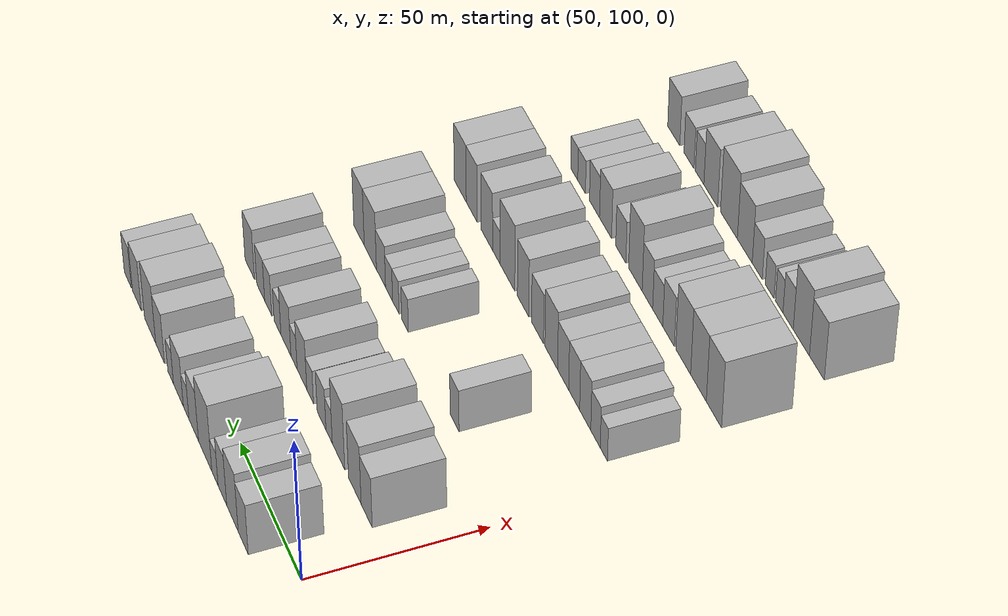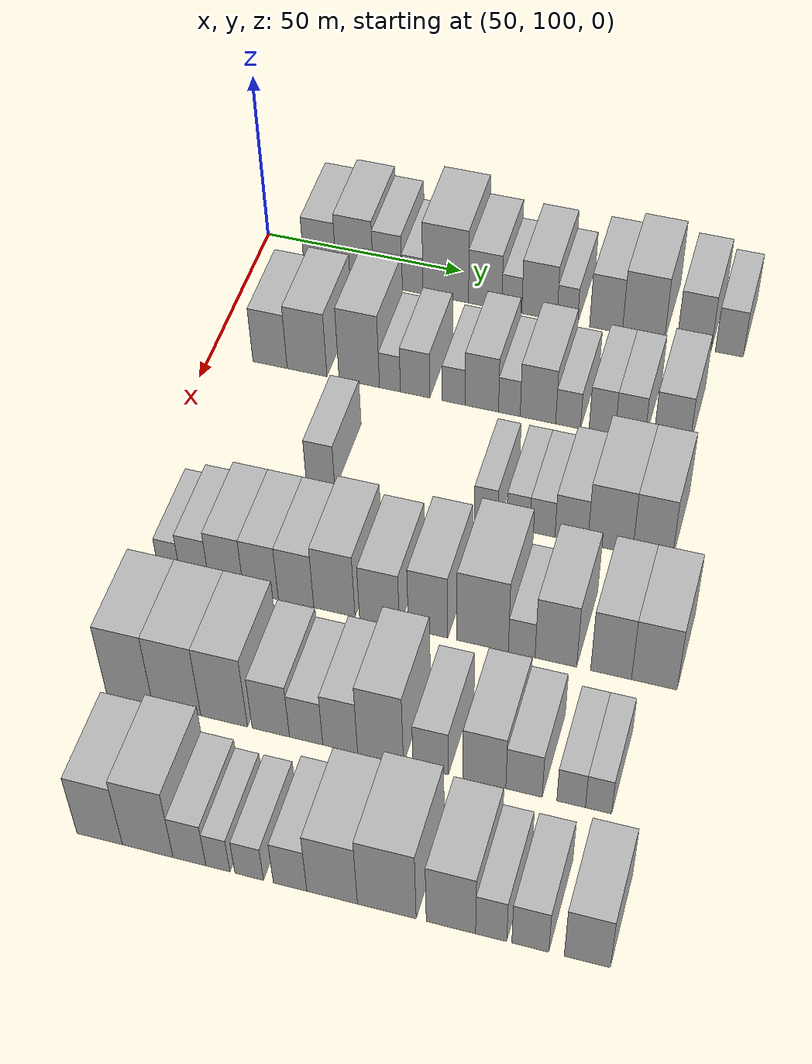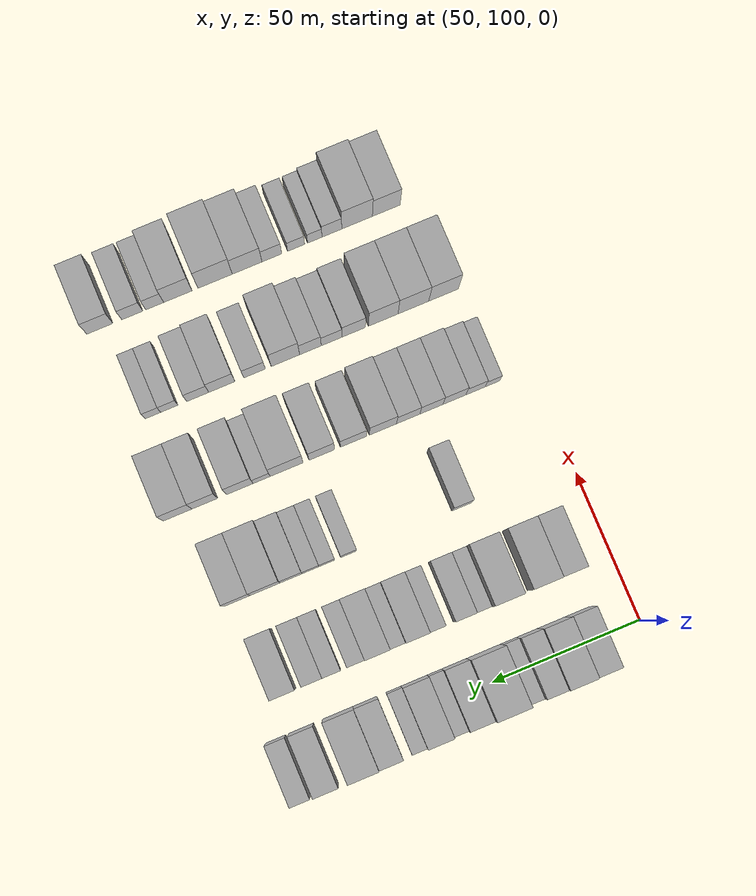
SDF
<sdf version="1.6">
 <world name="default">
  <model name="building_65">
   <static>1</static>
   <pose>50.0000 116.8563 0 0.000000 0.000000 0.000000</pose>
   <link name="link">
    <pose>0 0 9.00 0 0 0</pose>
    <collision name="collision"><geometry><box><size>20.0000 8.2860 18.0000</size></box></geometry></collision>
    <visual name="visual">
     <cast_shadows>0</cast_shadows>
     <geometry><box><size>20.0000 8.2860 18.0000</size></box></geometry>
     <material>
      <script>
       <uri>model://HANNAS_wall/materials/scripts</uri>
       <uri>model://HANNAS_wall/materials/textures</uri>
       <name>vrc/HANNAS_wall</name>
      </script>
     </material>
    </visual>
   </link>
  </model>
  <model name="building_66">
   <static>1</static>
   <pose>50.0000 125.7519 0 0.000000 0.000000 0.000000</pose>
   <link name="link">
    <pose>0 0 10.50 0 0 0</pose>
    <collision name="collision"><geometry><box><size>20.0000 9.5054 21.0000</size></box></geometry></collision>
    <visual name="visual">
     <cast_shadows>0</cast_shadows>
     <geometry><box><size>20.0000 9.5054 21.0000</size></box></geometry>
     <material>
      <script>
       <uri>model://HANNAS_wall/materials/scripts</uri>
       <uri>model://HANNAS_wall/materials/textures</uri>
       <name>vrc/HANNAS_wall</name>
      </script>
     </material>
    </visual>
   </link>
  </model>
  <model name="building_67">
   <static>1</static>
   <pose>50.0000 134.1260 0 0.000000 0.000000 0.000000</pose>
   <link name="link">
    <pose>0 0 9.00 0 0 0</pose>
    <collision name="collision"><geometry><box><size>20.0000 7.2428 18.0000</size></box></geometry></collision>
    <visual name="visual">
     <cast_shadows>0</cast_shadows>
     <geometry><box><size>20.0000 7.2428 18.0000</size></box></geometry>
     <material>
      <script>
       <uri>model://HANNAS_wall/materials/scripts</uri>
       <uri>model://HANNAS_wall/materials/textures</uri>
       <name>vrc/HANNAS_wall</name>
      </script>
     </material>
    </visual>
   </link>
  </model>
  <model name="building_68">
   <static>1</static>
   <pose>50.0000 140.4162 0 0.000000 0.000000 0.000000</pose>
   <link name="link">
    <pose>0 0 6.00 0 0 0</pose>
    <collision name="collision"><geometry><box><size>20.0000 5.3376 12.0000</size></box></geometry></collision>
    <visual name="visual">
     <cast_shadows>0</cast_shadows>
     <geometry><box><size>20.0000 5.3376 12.0000</size></box></geometry>
     <material>
      <script>
       <uri>model://HANNAS_wall/materials/scripts</uri>
       <uri>model://HANNAS_wall/materials/textures</uri>
       <name>vrc/HANNAS_wall</name>
      </script>
     </material>
    </visual>
   </link>
  </model>
  <model name="building_69">
   <static>1</static>
   <pose>50.0000 148.8198 0 0.000000 0.000000 0.000000</pose>
   <link name="link">
    <pose>0 0 12.00 0 0 0</pose>
    <collision name="collision"><geometry><box><size>20.0000 11.4696 24.0000</size></box></geometry></collision>
    <visual name="visual">
     <cast_shadows>0</cast_shadows>
     <geometry><box><size>20.0000 11.4696 24.0000</size></box></geometry>
     <material>
      <script>
       <uri>model://HANNAS_wall/materials/scripts</uri>
       <uri>model://HANNAS_wall/materials/textures</uri>
       <name>vrc/HANNAS_wall</name>
      </script>
     </material>
    </visual>
   </link>
  </model>
  <model name="building_70">
   <static>1</static>
   <pose>50.0000 158.7197 0 0.000000 0.000000 0.000000</pose>
   <link name="link">
    <pose>0 0 9.00 0 0 0</pose>
    <collision name="collision"><geometry><box><size>20.0000 8.3300 18.0000</size></box></geometry></collision>
    <visual name="visual">
     <cast_shadows>0</cast_shadows>
     <geometry><box><size>20.0000 8.3300 18.0000</size></box></geometry>
     <material>
      <script>
       <uri>model://HANNAS_wall/materials/scripts</uri>
       <uri>model://HANNAS_wall/materials/textures</uri>
       <name>vrc/HANNAS_wall</name>
      </script>
     </material>
    </visual>
   </link>
  </model>
  <model name="building_71">
   <static>1</static>
   <pose>50.0000 165.3689 0 0.000000 0.000000 0.000000</pose>
   <link name="link">
    <pose>0 0 6.00 0 0 0</pose>
    <collision name="collision"><geometry><box><size>20.0000 4.9685 12.0000</size></box></geometry></collision>
    <visual name="visual">
     <cast_shadows>0</cast_shadows>
     <geometry><box><size>20.0000 4.9685 12.0000</size></box></geometry>
     <material>
      <script>
       <uri>model://HANNAS_wall/materials/scripts</uri>
       <uri>model://HANNAS_wall/materials/textures</uri>
       <name>vrc/HANNAS_wall</name>
      </script>
     </material>
    </visual>
   </link>
  </model>
  <model name="building_72">
   <static>1</static>
   <pose>50.0000 172.2181 0 0.000000 0.000000 0.000000</pose>
   <link name="link">
    <pose>0 0 9.00 0 0 0</pose>
    <collision name="collision"><geometry><box><size>20.0000 8.7299 18.0000</size></box></geometry></collision>
    <visual name="visual">
     <cast_shadows>0</cast_shadows>
     <geometry><box><size>20.0000 8.7299 18.0000</size></box></geometry>
     <material>
      <script>
       <uri>model://HANNAS_wall/materials/scripts</uri>
       <uri>model://HANNAS_wall/materials/textures</uri>
       <name>vrc/HANNAS_wall</name>
      </script>
     </material>
    </visual>
   </link>
  </model>
  <model name="building_73">
   <static>1</static>
   <pose>50.0000 179.1128 0 0.000000 0.000000 0.000000</pose>
   <link name="link">
    <pose>0 0 6.00 0 0 0</pose>
    <collision name="collision"><geometry><box><size>20.0000 5.0595 12.0000</size></box></geometry></collision>
    <visual name="visual">
     <cast_shadows>0</cast_shadows>
     <geometry><box><size>20.0000 5.0595 12.0000</size></box></geometry>
     <material>
      <script>
       <uri>model://HANNAS_wall/materials/scripts</uri>
       <uri>model://HANNAS_wall/materials/textures</uri>
       <name>vrc/HANNAS_wall</name>
      </script>
     </material>
    </visual>
   </link>
  </model>
  <model name="building_74">
   <static>1</static>
   <pose>50.0000 188.6427 0 0.000000 0.000000 0.000000</pose>
   <link name="link">
    <pose>0 0 9.00 0 0 0</pose>
    <collision name="collision"><geometry><box><size>20.0000 8.0004 18.0000</size></box></geometry></collision>
    <visual name="visual">
     <cast_shadows>0</cast_shadows>
     <geometry><box><size>20.0000 8.0004 18.0000</size></box></geometry>
     <material>
      <script>
       <uri>model://HANNAS_wall/materials/scripts</uri>
       <uri>model://HANNAS_wall/materials/textures</uri>
       <name>vrc/HANNAS_wall</name>
      </script>
     </material>
    </visual>
   </link>
  </model>
  <model name="building_75">
   <static>1</static>
   <pose>50.0000 197.7881 0 0.000000 0.000000 0.000000</pose>
   <link name="link">
    <pose>0 0 10.50 0 0 0</pose>
    <collision name="collision"><geometry><box><size>20.0000 10.2904 21.0000</size></box></geometry></collision>
    <visual name="visual">
     <cast_shadows>0</cast_shadows>
     <geometry><box><size>20.0000 10.2904 21.0000</size></box></geometry>
     <material>
      <script>
       <uri>model://HANNAS_wall/materials/scripts</uri>
       <uri>model://HANNAS_wall/materials/textures</uri>
       <name>vrc/HANNAS_wall</name>
      </script>
     </material>
    </visual>
   </link>
  </model>
  <model name="building_76">
   <static>1</static>
   <pose>50.0000 210.0885 0 0.000000 0.000000 0.000000</pose>
   <link name="link">
    <pose>0 0 9.00 0 0 0</pose>
    <collision name="collision"><geometry><box><size>20.0000 8.3103 18.0000</size></box></geometry></collision>
    <visual name="visual">
     <cast_shadows>0</cast_shadows>
     <geometry><box><size>20.0000 8.3103 18.0000</size></box></geometry>
     <material>
      <script>
       <uri>model://HANNAS_wall/materials/scripts</uri>
       <uri>model://HANNAS_wall/materials/textures</uri>
       <name>vrc/HANNAS_wall</name>
      </script>
     </material>
    </visual>
   </link>
  </model>
  <model name="building_77">
   <static>1</static>
   <pose>50.0000 218.5886 0 0.000000 0.000000 0.000000</pose>
   <link name="link">
    <pose>0 0 7.50 0 0 0</pose>
    <collision name="collision"><geometry><box><size>20.0000 6.6901 15.0000</size></box></geometry></collision>
    <visual name="visual">
     <cast_shadows>0</cast_shadows>
     <geometry><box><size>20.0000 6.6901 15.0000</size></box></geometry>
     <material>
      <script>
       <uri>model://HANNAS_wall/materials/scripts</uri>
       <uri>model://HANNAS_wall/materials/textures</uri>
       <name>vrc/HANNAS_wall</name>
      </script>
     </material>
    </visual>
   </link>
  </model>
  <model name="building_185">
   <static>1</static>
   <pose>82.0000 114.6310 0 0.000000 0.000000 0.000000</pose>
   <link name="link">
    <pose>0 0 9.00 0 0 0</pose>
    <collision name="collision"><geometry><box><size>20.0000 8.5246 18.0000</size></box></geometry></collision>
    <visual name="visual">
     <cast_shadows>0</cast_shadows>
     <geometry><box><size>20.0000 8.5246 18.0000</size></box></geometry>
     <material>
      <script>
       <uri>model://HANNAS_wall/materials/scripts</uri>
       <uri>model://HANNAS_wall/materials/textures</uri>
       <name>vrc/HANNAS_wall</name>
      </script>
     </material>
    </visual>
   </link>
  </model>
  <model name="building_186">
   <static>1</static>
   <pose>82.0000 123.7968 0 0.000000 0.000000 0.000000</pose>
   <link name="link">
    <pose>0 0 10.50 0 0 0</pose>
    <collision name="collision"><geometry><box><size>20.0000 9.8070 21.0000</size></box></geometry></collision>
    <visual name="visual">
     <cast_shadows>0</cast_shadows>
     <geometry><box><size>20.0000 9.8070 21.0000</size></box></geometry>
     <material>
      <script>
       <uri>model://HANNAS_wall/materials/scripts</uri>
       <uri>model://HANNAS_wall/materials/textures</uri>
       <name>vrc/HANNAS_wall</name>
      </script>
     </material>
    </visual>
   </link>
  </model>
  <model name="building_187">
   <static>1</static>
   <pose>82.0000 136.6549 0 0.000000 0.000000 0.000000</pose>
   <link name="link">
    <pose>0 0 12.00 0 0 0</pose>
    <collision name="collision"><geometry><box><size>20.0000 9.9093 24.0000</size></box></geometry></collision>
    <visual name="visual">
     <cast_shadows>0</cast_shadows>
     <geometry><box><size>20.0000 9.9093 24.0000</size></box></geometry>
     <material>
      <script>
       <uri>model://HANNAS_wall/materials/scripts</uri>
       <uri>model://HANNAS_wall/materials/textures</uri>
       <name>vrc/HANNAS_wall</name>
      </script>
     </material>
    </visual>
   </link>
  </model>
  <model name="building_188">
   <static>1</static>
   <pose>82.0000 144.1538 0 0.000000 0.000000 0.000000</pose>
   <link name="link">
    <pose>0 0 6.00 0 0 0</pose>
    <collision name="collision"><geometry><box><size>20.0000 5.0884 12.0000</size></box></geometry></collision>
    <visual name="visual">
     <cast_shadows>0</cast_shadows>
     <geometry><box><size>20.0000 5.0884 12.0000</size></box></geometry>
     <material>
      <script>
       <uri>model://HANNAS_wall/materials/scripts</uri>
       <uri>model://HANNAS_wall/materials/textures</uri>
       <name>vrc/HANNAS_wall</name>
      </script>
     </material>
    </visual>
   </link>
  </model>
  <model name="building_189">
   <static>1</static>
   <pose>82.0000 150.2607 0 0.000000 0.000000 0.000000</pose>
   <link name="link">
    <pose>0 0 7.50 0 0 0</pose>
    <collision name="collision"><geometry><box><size>20.0000 7.1255 15.0000</size></box></geometry></collision>
    <visual name="visual">
     <cast_shadows>0</cast_shadows>
     <geometry><box><size>20.0000 7.1255 15.0000</size></box></geometry>
     <material>
      <script>
       <uri>model://HANNAS_wall/materials/scripts</uri>
       <uri>model://HANNAS_wall/materials/textures</uri>
       <name>vrc/HANNAS_wall</name>
      </script>
     </material>
    </visual>
   </link>
  </model>
  <model name="building_190">
   <static>1</static>
   <pose>82.0000 159.5762 0 0.000000 0.000000 0.000000</pose>
   <link name="link">
    <pose>0 0 6.00 0 0 0</pose>
    <collision name="collision"><geometry><box><size>20.0000 5.5056 12.0000</size></box></geometry></collision>
    <visual name="visual">
     <cast_shadows>0</cast_shadows>
     <geometry><box><size>20.0000 5.5056 12.0000</size></box></geometry>
     <material>
      <script>
       <uri>model://HANNAS_wall/materials/scripts</uri>
       <uri>model://HANNAS_wall/materials/textures</uri>
       <name>vrc/HANNAS_wall</name>
      </script>
     </material>
    </visual>
   </link>
  </model>
  <model name="building_191">
   <static>1</static>
   <pose>82.0000 166.3280 0 0.000000 0.000000 0.000000</pose>
   <link name="link">
    <pose>0 0 9.00 0 0 0</pose>
    <collision name="collision"><geometry><box><size>20.0000 7.9979 18.0000</size></box></geometry></collision>
    <visual name="visual">
     <cast_shadows>0</cast_shadows>
     <geometry><box><size>20.0000 7.9979 18.0000</size></box></geometry>
     <material>
      <script>
       <uri>model://HANNAS_wall/materials/scripts</uri>
       <uri>model://HANNAS_wall/materials/textures</uri>
       <name>vrc/HANNAS_wall</name>
      </script>
     </material>
    </visual>
   </link>
  </model>
  <model name="building_192">
   <static>1</static>
   <pose>82.0000 172.9100 0 0.000000 0.000000 0.000000</pose>
   <link name="link">
    <pose>0 0 6.00 0 0 0</pose>
    <collision name="collision"><geometry><box><size>20.0000 5.1660 12.0000</size></box></geometry></collision>
    <visual name="visual">
     <cast_shadows>0</cast_shadows>
     <geometry><box><size>20.0000 5.1660 12.0000</size></box></geometry>
     <material>
      <script>
       <uri>model://HANNAS_wall/materials/scripts</uri>
       <uri>model://HANNAS_wall/materials/textures</uri>
       <name>vrc/HANNAS_wall</name>
      </script>
     </material>
    </visual>
   </link>
  </model>
  <model name="building_193">
   <static>1</static>
   <pose>82.0000 179.7073 0 0.000000 0.000000 0.000000</pose>
   <link name="link">
    <pose>0 0 9.00 0 0 0</pose>
    <collision name="collision"><geometry><box><size>20.0000 8.4288 18.0000</size></box></geometry></collision>
    <visual name="visual">
     <cast_shadows>0</cast_shadows>
     <geometry><box><size>20.0000 8.4288 18.0000</size></box></geometry>
     <material>
      <script>
       <uri>model://HANNAS_wall/materials/scripts</uri>
       <uri>model://HANNAS_wall/materials/textures</uri>
       <name>vrc/HANNAS_wall</name>
      </script>
     </material>
    </visual>
   </link>
  </model>
  <model name="building_194">
   <static>1</static>
   <pose>82.0000 186.8511 0 0.000000 0.000000 0.000000</pose>
   <link name="link">
    <pose>0 0 6.00 0 0 0</pose>
    <collision name="collision"><geometry><box><size>20.0000 5.8588 12.0000</size></box></geometry></collision>
    <visual name="visual">
     <cast_shadows>0</cast_shadows>
     <geometry><box><size>20.0000 5.8588 12.0000</size></box></geometry>
     <material>
      <script>
       <uri>model://HANNAS_wall/materials/scripts</uri>
       <uri>model://HANNAS_wall/materials/textures</uri>
       <name>vrc/HANNAS_wall</name>
      </script>
     </material>
    </visual>
   </link>
  </model>
  <model name="building_195">
   <static>1</static>
   <pose>82.0000 194.8453 0 0.000000 0.000000 0.000000</pose>
   <link name="link">
    <pose>0 0 7.50 0 0 0</pose>
    <collision name="collision"><geometry><box><size>20.0000 6.1296 15.0000</size></box></geometry></collision>
    <visual name="visual">
     <cast_shadows>0</cast_shadows>
     <geometry><box><size>20.0000 6.1296 15.0000</size></box></geometry>
     <material>
      <script>
       <uri>model://HANNAS_wall/materials/scripts</uri>
       <uri>model://HANNAS_wall/materials/textures</uri>
       <name>vrc/HANNAS_wall</name>
      </script>
     </material>
    </visual>
   </link>
  </model>
  <model name="building_196">
   <static>1</static>
   <pose>82.0000 201.3573 0 0.000000 0.000000 0.000000</pose>
   <link name="link">
    <pose>0 0 7.50 0 0 0</pose>
    <collision name="collision"><geometry><box><size>20.0000 6.8944 15.0000</size></box></geometry></collision>
    <visual name="visual">
     <cast_shadows>0</cast_shadows>
     <geometry><box><size>20.0000 6.8944 15.0000</size></box></geometry>
     <material>
      <script>
       <uri>model://HANNAS_wall/materials/scripts</uri>
       <uri>model://HANNAS_wall/materials/textures</uri>
       <name>vrc/HANNAS_wall</name>
      </script>
     </material>
    </visual>
   </link>
  </model>
  <model name="building_197">
   <static>1</static>
   <pose>82.0000 210.9634 0 0.000000 0.000000 0.000000</pose>
   <link name="link">
    <pose>0 0 9.00 0 0 0</pose>
    <collision name="collision"><geometry><box><size>20.0000 8.3178 18.0000</size></box></geometry></collision>
    <visual name="visual">
     <cast_shadows>0</cast_shadows>
     <geometry><box><size>20.0000 8.3178 18.0000</size></box></geometry>
     <material>
      <script>
       <uri>model://HANNAS_wall/materials/scripts</uri>
       <uri>model://HANNAS_wall/materials/textures</uri>
       <name>vrc/HANNAS_wall</name>
      </script>
     </material>
    </visual>
   </link>
  </model>
  <model name="building_312">
   <static>1</static>
   <pose>114.0000 137.4032 0 0.000000 0.000000 0.000000</pose>
   <link name="link">
    <pose>0 0 7.50 0 0 0</pose>
    <collision name="collision"><geometry><box><size>20.0000 6.7089 15.0000</size></box></geometry></collision>
    <visual name="visual">
     <cast_shadows>0</cast_shadows>
     <geometry><box><size>20.0000 6.7089 15.0000</size></box></geometry>
     <material>
      <script>
       <uri>model://HANNAS_wall/materials/scripts</uri>
       <uri>model://HANNAS_wall/materials/textures</uri>
       <name>vrc/HANNAS_wall</name>
      </script>
     </material>
    </visual>
   </link>
  </model>
  <model name="building_313">
   <static>1</static>
   <pose>114.0000 175.7740 0 0.000000 0.000000 0.000000</pose>
   <link name="link">
    <pose>0 0 6.00 0 0 0</pose>
    <collision name="collision"><geometry><box><size>20.0000 5.3442 12.0000</size></box></geometry></collision>
    <visual name="visual">
     <cast_shadows>0</cast_shadows>
     <geometry><box><size>20.0000 5.3442 12.0000</size></box></geometry>
     <material>
      <script>
       <uri>model://HANNAS_wall/materials/scripts</uri>
       <uri>model://HANNAS_wall/materials/textures</uri>
       <name>vrc/HANNAS_wall</name>
      </script>
     </material>
    </visual>
   </link>
  </model>
  <model name="building_314">
   <static>1</static>
   <pose>114.0000 183.0753 0 0.000000 0.000000 0.000000</pose>
   <link name="link">
    <pose>0 0 6.00 0 0 0</pose>
    <collision name="collision"><geometry><box><size>20.0000 5.2583 12.0000</size></box></geometry></collision>
    <visual name="visual">
     <cast_shadows>0</cast_shadows>
     <geometry><box><size>20.0000 5.2583 12.0000</size></box></geometry>
     <material>
      <script>
       <uri>model://HANNAS_wall/materials/scripts</uri>
       <uri>model://HANNAS_wall/materials/textures</uri>
       <name>vrc/HANNAS_wall</name>
      </script>
     </material>
    </visual>
   </link>
  </model>
  <model name="building_315">
   <static>1</static>
   <pose>114.0000 188.5568 0 0.000000 0.000000 0.000000</pose>
   <link name="link">
    <pose>0 0 6.00 0 0 0</pose>
    <collision name="collision"><geometry><box><size>20.0000 5.7047 12.0000</size></box></geometry></collision>
    <visual name="visual">
     <cast_shadows>0</cast_shadows>
     <geometry><box><size>20.0000 5.7047 12.0000</size></box></geometry>
     <material>
      <script>
       <uri>model://HANNAS_wall/materials/scripts</uri>
       <uri>model://HANNAS_wall/materials/textures</uri>
       <name>vrc/HANNAS_wall</name>
      </script>
     </material>
    </visual>
   </link>
  </model>
  <model name="building_316">
   <static>1</static>
   <pose>114.0000 195.1018 0 0.000000 0.000000 0.000000</pose>
   <link name="link">
    <pose>0 0 7.50 0 0 0</pose>
    <collision name="collision"><geometry><box><size>20.0000 7.3852 15.0000</size></box></geometry></collision>
    <visual name="visual">
     <cast_shadows>0</cast_shadows>
     <geometry><box><size>20.0000 7.3852 15.0000</size></box></geometry>
     <material>
      <script>
       <uri>model://HANNAS_wall/materials/scripts</uri>
       <uri>model://HANNAS_wall/materials/textures</uri>
       <name>vrc/HANNAS_wall</name>
      </script>
     </material>
    </visual>
   </link>
  </model>
  <model name="building_317">
   <static>1</static>
   <pose>114.0000 203.8084 0 0.000000 0.000000 0.000000</pose>
   <link name="link">
    <pose>0 0 10.50 0 0 0</pose>
    <collision name="collision"><geometry><box><size>20.0000 10.0279 21.0000</size></box></geometry></collision>
    <visual name="visual">
     <cast_shadows>0</cast_shadows>
     <geometry><box><size>20.0000 10.0279 21.0000</size></box></geometry>
     <material>
      <script>
       <uri>model://HANNAS_wall/materials/scripts</uri>
       <uri>model://HANNAS_wall/materials/textures</uri>
       <name>vrc/HANNAS_wall</name>
      </script>
     </material>
    </visual>
   </link>
  </model>
  <model name="building_318">
   <static>1</static>
   <pose>114.0000 213.2002 0 0.000000 0.000000 0.000000</pose>
   <link name="link">
    <pose>0 0 10.50 0 0 0</pose>
    <collision name="collision"><geometry><box><size>20.0000 8.7557 21.0000</size></box></geometry></collision>
    <visual name="visual">
     <cast_shadows>0</cast_shadows>
     <geometry><box><size>20.0000 8.7557 21.0000</size></box></geometry>
     <material>
      <script>
       <uri>model://HANNAS_wall/materials/scripts</uri>
       <uri>model://HANNAS_wall/materials/textures</uri>
       <name>vrc/HANNAS_wall</name>
      </script>
     </material>
    </visual>
   </link>
  </model>
  <model name="building_417">
   <static>1</static>
   <pose>146.0000 113.3284 0 0.000000 0.000000 0.000000</pose>
   <link name="link">
    <pose>0 0 6.00 0 0 0</pose>
    <collision name="collision"><geometry><box><size>20.0000 4.9886 12.0000</size></box></geometry></collision>
    <visual name="visual">
     <cast_shadows>0</cast_shadows>
     <geometry><box><size>20.0000 4.9886 12.0000</size></box></geometry>
     <material>
      <script>
       <uri>model://HANNAS_wall/materials/scripts</uri>
       <uri>model://HANNAS_wall/materials/textures</uri>
       <name>vrc/HANNAS_wall</name>
      </script>
     </material>
    </visual>
   </link>
  </model>
  <model name="building_418">
   <static>1</static>
   <pose>146.0000 119.1225 0 0.000000 0.000000 0.000000</pose>
   <link name="link">
    <pose>0 0 7.50 0 0 0</pose>
    <collision name="collision"><geometry><box><size>20.0000 6.5997 15.0000</size></box></geometry></collision>
    <visual name="visual">
     <cast_shadows>0</cast_shadows>
     <geometry><box><size>20.0000 6.5997 15.0000</size></box></geometry>
     <material>
      <script>
       <uri>model://HANNAS_wall/materials/scripts</uri>
       <uri>model://HANNAS_wall/materials/textures</uri>
       <name>vrc/HANNAS_wall</name>
      </script>
     </material>
    </visual>
   </link>
  </model>
  <model name="building_419">
   <static>1</static>
   <pose>146.0000 126.3485 0 0.000000 0.000000 0.000000</pose>
   <link name="link">
    <pose>0 0 9.00 0 0 0</pose>
    <collision name="collision"><geometry><box><size>20.0000 7.8522 18.0000</size></box></geometry></collision>
    <visual name="visual">
     <cast_shadows>0</cast_shadows>
     <geometry><box><size>20.0000 7.8522 18.0000</size></box></geometry>
     <material>
      <script>
       <uri>model://HANNAS_wall/materials/scripts</uri>
       <uri>model://HANNAS_wall/materials/textures</uri>
       <name>vrc/HANNAS_wall</name>
      </script>
     </material>
    </visual>
   </link>
  </model>
  <model name="building_420">
   <static>1</static>
   <pose>146.0000 134.1893 0 0.000000 0.000000 0.000000</pose>
   <link name="link">
    <pose>0 0 9.00 0 0 0</pose>
    <collision name="collision"><geometry><box><size>20.0000 7.8293 18.0000</size></box></geometry></collision>
    <visual name="visual">
     <cast_shadows>0</cast_shadows>
     <geometry><box><size>20.0000 7.8293 18.0000</size></box></geometry>
     <material>
      <script>
       <uri>model://HANNAS_wall/materials/scripts</uri>
       <uri>model://HANNAS_wall/materials/textures</uri>
       <name>vrc/HANNAS_wall</name>
      </script>
     </material>
    </visual>
   </link>
  </model>
  <model name="building_421">
   <static>1</static>
   <pose>146.0000 142.0941 0 0.000000 0.000000 0.000000</pose>
   <link name="link">
    <pose>0 0 9.00 0 0 0</pose>
    <collision name="collision"><geometry><box><size>20.0000 7.9803 18.0000</size></box></geometry></collision>
    <visual name="visual">
     <cast_shadows>0</cast_shadows>
     <geometry><box><size>20.0000 7.9803 18.0000</size></box></geometry>
     <material>
      <script>
       <uri>model://HANNAS_wall/materials/scripts</uri>
       <uri>model://HANNAS_wall/materials/textures</uri>
       <name>vrc/HANNAS_wall</name>
      </script>
     </material>
    </visual>
   </link>
  </model>
  <model name="building_422">
   <static>1</static>
   <pose>146.0000 150.7031 0 0.000000 0.000000 0.000000</pose>
   <link name="link">
    <pose>0 0 10.50 0 0 0</pose>
    <collision name="collision"><geometry><box><size>20.0000 9.2378 21.0000</size></box></geometry></collision>
    <visual name="visual">
     <cast_shadows>0</cast_shadows>
     <geometry><box><size>20.0000 9.2378 21.0000</size></box></geometry>
     <material>
      <script>
       <uri>model://HANNAS_wall/materials/scripts</uri>
       <uri>model://HANNAS_wall/materials/textures</uri>
       <name>vrc/HANNAS_wall</name>
      </script>
     </material>
    </visual>
   </link>
  </model>
  <model name="building_423">
   <static>1</static>
   <pose>146.0000 160.7408 0 0.000000 0.000000 0.000000</pose>
   <link name="link">
    <pose>0 0 9.00 0 0 0</pose>
    <collision name="collision"><geometry><box><size>20.0000 8.8376 18.0000</size></box></geometry></collision>
    <visual name="visual">
     <cast_shadows>0</cast_shadows>
     <geometry><box><size>20.0000 8.8376 18.0000</size></box></geometry>
     <material>
      <script>
       <uri>model://HANNAS_wall/materials/scripts</uri>
       <uri>model://HANNAS_wall/materials/textures</uri>
       <name>vrc/HANNAS_wall</name>
      </script>
     </material>
    </visual>
   </link>
  </model>
  <model name="building_424">
   <static>1</static>
   <pose>146.0000 171.4833 0 0.000000 0.000000 0.000000</pose>
   <link name="link">
    <pose>0 0 10.50 0 0 0</pose>
    <collision name="collision"><geometry><box><size>20.0000 8.6473 21.0000</size></box></geometry></collision>
    <visual name="visual">
     <cast_shadows>0</cast_shadows>
     <geometry><box><size>20.0000 8.6473 21.0000</size></box></geometry>
     <material>
      <script>
       <uri>model://HANNAS_wall/materials/scripts</uri>
       <uri>model://HANNAS_wall/materials/textures</uri>
       <name>vrc/HANNAS_wall</name>
      </script>
     </material>
    </visual>
   </link>
  </model>
  <model name="building_425">
   <static>1</static>
   <pose>146.0000 183.4043 0 0.000000 0.000000 0.000000</pose>
   <link name="link">
    <pose>0 0 12.00 0 0 0</pose>
    <collision name="collision"><geometry><box><size>20.0000 11.1948 24.0000</size></box></geometry></collision>
    <visual name="visual">
     <cast_shadows>0</cast_shadows>
     <geometry><box><size>20.0000 11.1948 24.0000</size></box></geometry>
     <material>
      <script>
       <uri>model://HANNAS_wall/materials/scripts</uri>
       <uri>model://HANNAS_wall/materials/textures</uri>
       <name>vrc/HANNAS_wall</name>
      </script>
     </material>
    </visual>
   </link>
  </model>
  <model name="building_426">
   <static>1</static>
   <pose>146.0000 191.8885 0 0.000000 0.000000 0.000000</pose>
   <link name="link">
    <pose>0 0 6.00 0 0 0</pose>
    <collision name="collision"><geometry><box><size>20.0000 5.7737 12.0000</size></box></geometry></collision>
    <visual name="visual">
     <cast_shadows>0</cast_shadows>
     <geometry><box><size>20.0000 5.7737 12.0000</size></box></geometry>
     <material>
      <script>
       <uri>model://HANNAS_wall/materials/scripts</uri>
       <uri>model://HANNAS_wall/materials/textures</uri>
       <name>vrc/HANNAS_wall</name>
      </script>
     </material>
    </visual>
   </link>
  </model>
  <model name="building_427">
   <static>1</static>
   <pose>146.0000 199.2631 0 0.000000 0.000000 0.000000</pose>
   <link name="link">
    <pose>0 0 10.50 0 0 0</pose>
    <collision name="collision"><geometry><box><size>20.0000 8.9755 21.0000</size></box></geometry></collision>
    <visual name="visual">
     <cast_shadows>0</cast_shadows>
     <geometry><box><size>20.0000 8.9755 21.0000</size></box></geometry>
     <material>
      <script>
       <uri>model://HANNAS_wall/materials/scripts</uri>
       <uri>model://HANNAS_wall/materials/textures</uri>
       <name>vrc/HANNAS_wall</name>
      </script>
     </material>
    </visual>
   </link>
  </model>
  <model name="building_428">
   <static>1</static>
   <pose>146.0000 211.0952 0 0.000000 0.000000 0.000000</pose>
   <link name="link">
    <pose>0 0 10.50 0 0 0</pose>
    <collision name="collision"><geometry><box><size>20.0000 8.6887 21.0000</size></box></geometry></collision>
    <visual name="visual">
     <cast_shadows>0</cast_shadows>
     <geometry><box><size>20.0000 8.6887 21.0000</size></box></geometry>
     <material>
      <script>
       <uri>model://HANNAS_wall/materials/scripts</uri>
       <uri>model://HANNAS_wall/materials/textures</uri>
       <name>vrc/HANNAS_wall</name>
      </script>
     </material>
    </visual>
   </link>
  </model>
  <model name="building_429">
   <static>1</static>
   <pose>146.0000 220.2726 0 0.000000 0.000000 0.000000</pose>
   <link name="link">
    <pose>0 0 10.50 0 0 0</pose>
    <collision name="collision"><geometry><box><size>20.0000 9.6662 21.0000</size></box></geometry></collision>
    <visual name="visual">
     <cast_shadows>0</cast_shadows>
     <geometry><box><size>20.0000 9.6662 21.0000</size></box></geometry>
     <material>
      <script>
       <uri>model://HANNAS_wall/materials/scripts</uri>
       <uri>model://HANNAS_wall/materials/textures</uri>
       <name>vrc/HANNAS_wall</name>
      </script>
     </material>
    </visual>
   </link>
  </model>
  <model name="building_538">
   <static>1</static>
   <pose>178.0000 116.4354 0 0.000000 0.000000 0.000000</pose>
   <link name="link">
    <pose>0 0 12.00 0 0 0</pose>
    <collision name="collision"><geometry><box><size>20.0000 10.1534 24.0000</size></box></geometry></collision>
    <visual name="visual">
     <cast_shadows>0</cast_shadows>
     <geometry><box><size>20.0000 10.1534 24.0000</size></box></geometry>
     <material>
      <script>
       <uri>model://HANNAS_wall/materials/scripts</uri>
       <uri>model://HANNAS_wall/materials/textures</uri>
       <name>vrc/HANNAS_wall</name>
      </script>
     </material>
    </visual>
   </link>
  </model>
  <model name="building_539">
   <static>1</static>
   <pose>178.0000 126.7901 0 0.000000 0.000000 0.000000</pose>
   <link name="link">
    <pose>0 0 12.00 0 0 0</pose>
    <collision name="collision"><geometry><box><size>20.0000 10.5560 24.0000</size></box></geometry></collision>
    <visual name="visual">
     <cast_shadows>0</cast_shadows>
     <geometry><box><size>20.0000 10.5560 24.0000</size></box></geometry>
     <material>
      <script>
       <uri>model://HANNAS_wall/materials/scripts</uri>
       <uri>model://HANNAS_wall/materials/textures</uri>
       <name>vrc/HANNAS_wall</name>
      </script>
     </material>
    </visual>
   </link>
  </model>
  <model name="building_540">
   <static>1</static>
   <pose>178.0000 137.1290 0 0.000000 0.000000 0.000000</pose>
   <link name="link">
    <pose>0 0 12.00 0 0 0</pose>
    <collision name="collision"><geometry><box><size>20.0000 10.1218 24.0000</size></box></geometry></collision>
    <visual name="visual">
     <cast_shadows>0</cast_shadows>
     <geometry><box><size>20.0000 10.1218 24.0000</size></box></geometry>
     <material>
      <script>
       <uri>model://HANNAS_wall/materials/scripts</uri>
       <uri>model://HANNAS_wall/materials/textures</uri>
       <name>vrc/HANNAS_wall</name>
      </script>
     </material>
    </visual>
   </link>
  </model>
  <model name="building_541">
   <static>1</static>
   <pose>178.0000 147.1968 0 0.000000 0.000000 0.000000</pose>
   <link name="link">
    <pose>0 0 9.00 0 0 0</pose>
    <collision name="collision"><geometry><box><size>20.0000 8.0137 18.0000</size></box></geometry></collision>
    <visual name="visual">
     <cast_shadows>0</cast_shadows>
     <geometry><box><size>20.0000 8.0137 18.0000</size></box></geometry>
     <material>
      <script>
       <uri>model://HANNAS_wall/materials/scripts</uri>
       <uri>model://HANNAS_wall/materials/textures</uri>
       <name>vrc/HANNAS_wall</name>
      </script>
     </material>
    </visual>
   </link>
  </model>
  <model name="building_542">
   <static>1</static>
   <pose>178.0000 154.7585 0 0.000000 0.000000 0.000000</pose>
   <link name="link">
    <pose>0 0 7.50 0 0 0</pose>
    <collision name="collision"><geometry><box><size>20.0000 7.1097 15.0000</size></box></geometry></collision>
    <visual name="visual">
     <cast_shadows>0</cast_shadows>
     <geometry><box><size>20.0000 7.1097 15.0000</size></box></geometry>
     <material>
      <script>
       <uri>model://HANNAS_wall/materials/scripts</uri>
       <uri>model://HANNAS_wall/materials/textures</uri>
       <name>vrc/HANNAS_wall</name>
      </script>
     </material>
    </visual>
   </link>
  </model>
  <model name="building_543">
   <static>1</static>
   <pose>178.0000 162.0100 0 0.000000 0.000000 0.000000</pose>
   <link name="link">
    <pose>0 0 9.00 0 0 0</pose>
    <collision name="collision"><geometry><box><size>20.0000 7.3933 18.0000</size></box></geometry></collision>
    <visual name="visual">
     <cast_shadows>0</cast_shadows>
     <geometry><box><size>20.0000 7.3933 18.0000</size></box></geometry>
     <material>
      <script>
       <uri>model://HANNAS_wall/materials/scripts</uri>
       <uri>model://HANNAS_wall/materials/textures</uri>
       <name>vrc/HANNAS_wall</name>
      </script>
     </material>
    </visual>
   </link>
  </model>
  <model name="building_544">
   <static>1</static>
   <pose>178.0000 170.5435 0 0.000000 0.000000 0.000000</pose>
   <link name="link">
    <pose>0 0 12.00 0 0 0</pose>
    <collision name="collision"><geometry><box><size>20.0000 9.6737 24.0000</size></box></geometry></collision>
    <visual name="visual">
     <cast_shadows>0</cast_shadows>
     <geometry><box><size>20.0000 9.6737 24.0000</size></box></geometry>
     <material>
      <script>
       <uri>model://HANNAS_wall/materials/scripts</uri>
       <uri>model://HANNAS_wall/materials/textures</uri>
       <name>vrc/HANNAS_wall</name>
      </script>
     </material>
    </visual>
   </link>
  </model>
  <model name="building_545">
   <static>1</static>
   <pose>178.0000 181.0706 0 0.000000 0.000000 0.000000</pose>
   <link name="link">
    <pose>0 0 7.50 0 0 0</pose>
    <collision name="collision"><geometry><box><size>20.0000 7.3804 15.0000</size></box></geometry></collision>
    <visual name="visual">
     <cast_shadows>0</cast_shadows>
     <geometry><box><size>20.0000 7.3804 15.0000</size></box></geometry>
     <material>
      <script>
       <uri>model://HANNAS_wall/materials/scripts</uri>
       <uri>model://HANNAS_wall/materials/textures</uri>
       <name>vrc/HANNAS_wall</name>
      </script>
     </material>
    </visual>
   </link>
  </model>
  <model name="building_546">
   <static>1</static>
   <pose>178.0000 192.2032 0 0.000000 0.000000 0.000000</pose>
   <link name="link">
    <pose>0 0 9.00 0 0 0</pose>
    <collision name="collision"><geometry><box><size>20.0000 8.8850 18.0000</size></box></geometry></collision>
    <visual name="visual">
     <cast_shadows>0</cast_shadows>
     <geometry><box><size>20.0000 8.8850 18.0000</size></box></geometry>
     <material>
      <script>
       <uri>model://HANNAS_wall/materials/scripts</uri>
       <uri>model://HANNAS_wall/materials/textures</uri>
       <name>vrc/HANNAS_wall</name>
      </script>
     </material>
    </visual>
   </link>
  </model>
  <model name="building_547">
   <static>1</static>
   <pose>178.0000 200.3916 0 0.000000 0.000000 0.000000</pose>
   <link name="link">
    <pose>0 0 7.50 0 0 0</pose>
    <collision name="collision"><geometry><box><size>20.0000 7.4918 15.0000</size></box></geometry></collision>
    <visual name="visual">
     <cast_shadows>0</cast_shadows>
     <geometry><box><size>20.0000 7.4918 15.0000</size></box></geometry>
     <material>
      <script>
       <uri>model://HANNAS_wall/materials/scripts</uri>
       <uri>model://HANNAS_wall/materials/textures</uri>
       <name>vrc/HANNAS_wall</name>
      </script>
     </material>
    </visual>
   </link>
  </model>
  <model name="building_548">
   <static>1</static>
   <pose>178.0000 210.0456 0 0.000000 0.000000 0.000000</pose>
   <link name="link">
    <pose>0 0 6.00 0 0 0</pose>
    <collision name="collision"><geometry><box><size>20.0000 5.8163 12.0000</size></box></geometry></collision>
    <visual name="visual">
     <cast_shadows>0</cast_shadows>
     <geometry><box><size>20.0000 5.8163 12.0000</size></box></geometry>
     <material>
      <script>
       <uri>model://HANNAS_wall/materials/scripts</uri>
       <uri>model://HANNAS_wall/materials/textures</uri>
       <name>vrc/HANNAS_wall</name>
      </script>
     </material>
    </visual>
   </link>
  </model>
  <model name="building_549">
   <static>1</static>
   <pose>178.0000 215.6228 0 0.000000 0.000000 0.000000</pose>
   <link name="link">
    <pose>0 0 6.00 0 0 0</pose>
    <collision name="collision"><geometry><box><size>20.0000 5.3381 12.0000</size></box></geometry></collision>
    <visual name="visual">
     <cast_shadows>0</cast_shadows>
     <geometry><box><size>20.0000 5.3381 12.0000</size></box></geometry>
     <material>
      <script>
       <uri>model://HANNAS_wall/materials/scripts</uri>
       <uri>model://HANNAS_wall/materials/textures</uri>
       <name>vrc/HANNAS_wall</name>
      </script>
     </material>
    </visual>
   </link>
  </model>
  <model name="building_652">
   <static>1</static>
   <pose>210.0000 122.6198 0 0.000000 0.000000 0.000000</pose>
   <link name="link">
    <pose>0 0 10.50 0 0 0</pose>
    <collision name="collision"><geometry><box><size>20.0000 9.5481 21.0000</size></box></geometry></collision>
    <visual name="visual">
     <cast_shadows>0</cast_shadows>
     <geometry><box><size>20.0000 9.5481 21.0000</size></box></geometry>
     <material>
      <script>
       <uri>model://HANNAS_wall/materials/scripts</uri>
       <uri>model://HANNAS_wall/materials/textures</uri>
       <name>vrc/HANNAS_wall</name>
      </script>
     </material>
    </visual>
   </link>
  </model>
  <model name="building_653">
   <static>1</static>
   <pose>210.0000 132.6651 0 0.000000 0.000000 0.000000</pose>
   <link name="link">
    <pose>0 0 12.00 0 0 0</pose>
    <collision name="collision"><geometry><box><size>20.0000 10.5425 24.0000</size></box></geometry></collision>
    <visual name="visual">
     <cast_shadows>0</cast_shadows>
     <geometry><box><size>20.0000 10.5425 24.0000</size></box></geometry>
     <material>
      <script>
       <uri>model://HANNAS_wall/materials/scripts</uri>
       <uri>model://HANNAS_wall/materials/textures</uri>
       <name>vrc/HANNAS_wall</name>
      </script>
     </material>
    </visual>
   </link>
  </model>
  <model name="building_654">
   <static>1</static>
   <pose>210.0000 141.3211 0 0.000000 0.000000 0.000000</pose>
   <link name="link">
    <pose>0 0 7.50 0 0 0</pose>
    <collision name="collision"><geometry><box><size>20.0000 6.7695 15.0000</size></box></geometry></collision>
    <visual name="visual">
     <cast_shadows>0</cast_shadows>
     <geometry><box><size>20.0000 6.7695 15.0000</size></box></geometry>
     <material>
      <script>
       <uri>model://HANNAS_wall/materials/scripts</uri>
       <uri>model://HANNAS_wall/materials/textures</uri>
       <name>vrc/HANNAS_wall</name>
      </script>
     </material>
    </visual>
   </link>
  </model>
  <model name="building_655">
   <static>1</static>
   <pose>210.0000 147.1793 0 0.000000 0.000000 0.000000</pose>
   <link name="link">
    <pose>0 0 6.00 0 0 0</pose>
    <collision name="collision"><geometry><box><size>20.0000 4.9470 12.0000</size></box></geometry></collision>
    <visual name="visual">
     <cast_shadows>0</cast_shadows>
     <geometry><box><size>20.0000 4.9470 12.0000</size></box></geometry>
     <material>
      <script>
       <uri>model://HANNAS_wall/materials/scripts</uri>
       <uri>model://HANNAS_wall/materials/textures</uri>
       <name>vrc/HANNAS_wall</name>
      </script>
     </material>
    </visual>
   </link>
  </model>
  <model name="building_656">
   <static>1</static>
   <pose>210.0000 153.5781 0 0.000000 0.000000 0.000000</pose>
   <link name="link">
    <pose>0 0 6.00 0 0 0</pose>
    <collision name="collision"><geometry><box><size>20.0000 5.8507 12.0000</size></box></geometry></collision>
    <visual name="visual">
     <cast_shadows>0</cast_shadows>
     <geometry><box><size>20.0000 5.8507 12.0000</size></box></geometry>
     <material>
      <script>
       <uri>model://HANNAS_wall/materials/scripts</uri>
       <uri>model://HANNAS_wall/materials/textures</uri>
       <name>vrc/HANNAS_wall</name>
      </script>
     </material>
    </visual>
   </link>
  </model>
  <model name="building_657">
   <static>1</static>
   <pose>210.0000 161.9030 0 0.000000 0.000000 0.000000</pose>
   <link name="link">
    <pose>0 0 7.50 0 0 0</pose>
    <collision name="collision"><geometry><box><size>20.0000 6.7990 15.0000</size></box></geometry></collision>
    <visual name="visual">
     <cast_shadows>0</cast_shadows>
     <geometry><box><size>20.0000 6.7990 15.0000</size></box></geometry>
     <material>
      <script>
       <uri>model://HANNAS_wall/materials/scripts</uri>
       <uri>model://HANNAS_wall/materials/textures</uri>
       <name>vrc/HANNAS_wall</name>
      </script>
     </material>
    </visual>
   </link>
  </model>
  <model name="building_658">
   <static>1</static>
   <pose>210.0000 170.3984 0 0.000000 0.000000 0.000000</pose>
   <link name="link">
    <pose>0 0 10.50 0 0 0</pose>
    <collision name="collision"><geometry><box><size>20.0000 10.1918 21.0000</size></box></geometry></collision>
    <visual name="visual">
     <cast_shadows>0</cast_shadows>
     <geometry><box><size>20.0000 10.1918 21.0000</size></box></geometry>
     <material>
      <script>
       <uri>model://HANNAS_wall/materials/scripts</uri>
       <uri>model://HANNAS_wall/materials/textures</uri>
       <name>vrc/HANNAS_wall</name>
      </script>
     </material>
    </visual>
   </link>
  </model>
  <model name="building_659">
   <static>1</static>
   <pose>210.0000 181.3520 0 0.000000 0.000000 0.000000</pose>
   <link name="link">
    <pose>0 0 12.00 0 0 0</pose>
    <collision name="collision"><geometry><box><size>20.0000 11.7154 24.0000</size></box></geometry></collision>
    <visual name="visual">
     <cast_shadows>0</cast_shadows>
     <geometry><box><size>20.0000 11.7154 24.0000</size></box></geometry>
     <material>
      <script>
       <uri>model://HANNAS_wall/materials/scripts</uri>
       <uri>model://HANNAS_wall/materials/textures</uri>
       <name>vrc/HANNAS_wall</name>
      </script>
     </material>
    </visual>
   </link>
  </model>
  <model name="building_660">
   <static>1</static>
   <pose>210.0000 194.0695 0 0.000000 0.000000 0.000000</pose>
   <link name="link">
    <pose>0 0 10.50 0 0 0</pose>
    <collision name="collision"><geometry><box><size>20.0000 9.7196 21.0000</size></box></geometry></collision>
    <visual name="visual">
     <cast_shadows>0</cast_shadows>
     <geometry><box><size>20.0000 9.7196 21.0000</size></box></geometry>
     <material>
      <script>
       <uri>model://HANNAS_wall/materials/scripts</uri>
       <uri>model://HANNAS_wall/materials/textures</uri>
       <name>vrc/HANNAS_wall</name>
      </script>
     </material>
    </visual>
   </link>
  </model>
  <model name="building_661">
   <static>1</static>
   <pose>210.0000 201.9732 0 0.000000 0.000000 0.000000</pose>
   <link name="link">
    <pose>0 0 7.50 0 0 0</pose>
    <collision name="collision"><geometry><box><size>20.0000 6.0879 15.0000</size></box></geometry></collision>
    <visual name="visual">
     <cast_shadows>0</cast_shadows>
     <geometry><box><size>20.0000 6.0879 15.0000</size></box></geometry>
     <material>
      <script>
       <uri>model://HANNAS_wall/materials/scripts</uri>
       <uri>model://HANNAS_wall/materials/textures</uri>
       <name>vrc/HANNAS_wall</name>
      </script>
     </material>
    </visual>
   </link>
  </model>
  <model name="building_662">
   <static>1</static>
   <pose>210.0000 209.6165 0 0.000000 0.000000 0.000000</pose>
   <link name="link">
    <pose>0 0 7.50 0 0 0</pose>
    <collision name="collision"><geometry><box><size>20.0000 7.1986 15.0000</size></box></geometry></collision>
    <visual name="visual">
     <cast_shadows>0</cast_shadows>
     <geometry><box><size>20.0000 7.1986 15.0000</size></box></geometry>
     <material>
      <script>
       <uri>model://HANNAS_wall/materials/scripts</uri>
       <uri>model://HANNAS_wall/materials/textures</uri>
       <name>vrc/HANNAS_wall</name>
      </script>
     </material>
    </visual>
   </link>
  </model>
  <model name="building_663">
   <static>1</static>
   <pose>210.0000 220.6588 0 0.000000 0.000000 0.000000</pose>
   <link name="link">
    <pose>0 0 9.00 0 0 0</pose>
    <collision name="collision"><geometry><box><size>20.0000 8.8860 18.0000</size></box></geometry></collision>
    <visual name="visual">
     <cast_shadows>0</cast_shadows>
     <geometry><box><size>20.0000 8.8860 18.0000</size></box></geometry>
     <material>
      <script>
       <uri>model://HANNAS_wall/materials/scripts</uri>
       <uri>model://HANNAS_wall/materials/textures</uri>
       <name>vrc/HANNAS_wall</name>
      </script>
     </material>
    </visual>
   </link>
  </model>
 </world>
</sdf>
